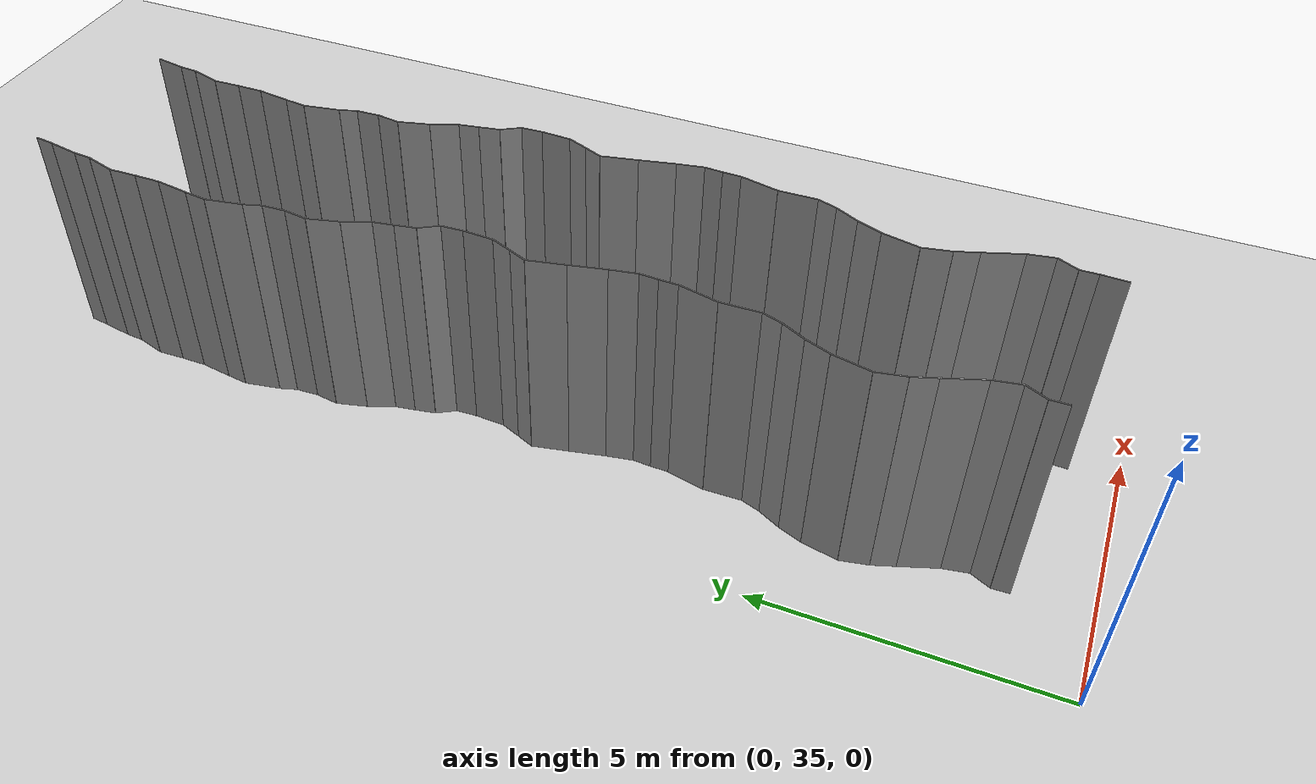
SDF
<sdf version="1.6">
 <world name="default">
  <model name="ground_plane">
   <static>1</static>
   <link name="link">
    <collision name="collision">
     <geometry><plane><normal>0 0 1</normal><size>200 200</size></plane></geometry>
     <surface><friction><ode><mu>100</mu><mu2>50</mu2></ode></friction></surface>
    </collision>
    <visual name="visual">
     <cast_shadows>0</cast_shadows>
     <geometry><plane><normal>0 0 1</normal><size>200 200</size></plane></geometry>
     <material>
      <script><uri>file://media/materials/scripts/gazebo.material</uri><name>Gazebo/Grey</name></script>
     </material>
    </visual>
   </link>
   <pose>0 100 0 0 -0 0</pose>
  </model>
  <model name="wall_149">
   <static>1</static>
   <pose>4.607935788455231 36.032615531792295 2 0 0 -0.03438574817152011</pose>
   <link name="link">
    <collision name="collision"><geometry><box><size>0.02 0.444556654903 4</size></box></geometry></collision>
    <visual name="visual">
     <material>
      <script><name>Gazebo/Grey</name><uri>file://media/materials/scripts/gazebo.material</uri></script>
     </material>
     <geometry><box><size>0.02 0.444556654903 4</size></box></geometry>
    </visual>
   </link>
  </model>
  <model name="wall_150">
   <static>1</static>
   <pose>1.6116442187727564 36.40527893857269 2 0 0 0.026125879081817616</pose>
   <link name="link">
    <collision name="collision"><geometry><box><size>0.02 0.301135716126 4</size></box></geometry></collision>
    <visual name="visual">
     <material>
      <script><name>Gazebo/Grey</name><uri>file://media/materials/scripts/gazebo.material</uri></script>
     </material>
     <geometry><box><size>0.02 0.301135716126 4</size></box></geometry>
    </visual>
   </link>
  </model>
  <model name="wall_151">
   <static>1</static>
   <pose>4.611644218772756 36.40527893857269 2 0 0 0.026125879081817616</pose>
   <link name="link">
    <collision name="collision"><geometry><box><size>0.02 0.301135716126 4</size></box></geometry></collision>
    <visual name="visual">
     <material>
      <script><name>Gazebo/Grey</name><uri>file://media/materials/scripts/gazebo.material</uri></script>
     </material>
     <geometry><box><size>0.02 0.301135716126 4</size></box></geometry>
    </visual>
   </link>
  </model>
  <model name="wall_152">
   <static>1</static>
   <pose>1.69193314611958 36.724530471926734 2 0 0 -0.46295833106314915</pose>
   <link name="link">
    <collision name="collision"><geometry><box><size>0.02 0.37717316155 4</size></box></geometry></collision>
    <visual name="visual">
     <material>
      <script><name>Gazebo/Grey</name><uri>file://media/materials/scripts/gazebo.material</uri></script>
     </material>
     <geometry><box><size>0.02 0.37717316155 4</size></box></geometry>
    </visual>
   </link>
  </model>
  <model name="wall_153">
   <static>1</static>
   <pose>4.69193314611958 36.724530471926734 2 0 0 -0.46295833106314915</pose>
   <link name="link">
    <collision name="collision"><geometry><box><size>0.02 0.37717316155 4</size></box></geometry></collision>
    <visual name="visual">
     <material>
      <script><name>Gazebo/Grey</name><uri>file://media/materials/scripts/gazebo.material</uri></script>
     </material>
     <geometry><box><size>0.02 0.37717316155 4</size></box></geometry>
    </visual>
   </link>
  </model>
  <model name="wall_154">
   <static>1</static>
   <pose>1.7366929114682192 37.11580565431532 2 0 0 0.17550288364480096</pose>
   <link name="link">
    <collision name="collision"><geometry><box><size>0.02 0.452023850649 4</size></box></geometry></collision>
    <visual name="visual">
     <material>
      <script><name>Gazebo/Grey</name><uri>file://media/materials/scripts/gazebo.material</uri></script>
     </material>
     <geometry><box><size>0.02 0.452023850649 4</size></box></geometry>
    </visual>
   </link>
  </model>
  <model name="wall_155">
   <static>1</static>
   <pose>4.73669291146822 37.11580565431532 2 0 0 0.17550288364480096</pose>
   <link name="link">
    <collision name="collision"><geometry><box><size>0.02 0.452023850649 4</size></box></geometry></collision>
    <visual name="visual">
     <material>
      <script><name>Gazebo/Grey</name><uri>file://media/materials/scripts/gazebo.material</uri></script>
     </material>
     <geometry><box><size>0.02 0.452023850649 4</size></box></geometry>
    </visual>
   </link>
  </model>
  <model name="wall_156">
   <static>1</static>
   <pose>1.5841653047607114 37.66052971647894 2 0 0 0.33750630671110526</pose>
   <link name="link">
    <collision name="collision"><geometry><box><size>0.02 0.682894497378 4</size></box></geometry></collision>
    <visual name="visual">
     <material>
      <script><name>Gazebo/Grey</name><uri>file://media/materials/scripts/gazebo.material</uri></script>
     </material>
     <geometry><box><size>0.02 0.682894497378 4</size></box></geometry>
    </visual>
   </link>
  </model>
  <model name="wall_157">
   <static>1</static>
   <pose>4.584165304760711 37.66052971647894 2 0 0 0.33750630671110526</pose>
   <link name="link">
    <collision name="collision"><geometry><box><size>0.02 0.682894497378 4</size></box></geometry></collision>
    <visual name="visual">
     <material>
      <script><name>Gazebo/Grey</name><uri>file://media/materials/scripts/gazebo.material</uri></script>
     </material>
     <geometry><box><size>0.02 0.682894497378 4</size></box></geometry>
    </visual>
   </link>
  </model>
  <model name="wall_158">
   <static>1</static>
   <pose>1.4048971000738317 38.176314369873495 2 0 0 0.32949125764551274</pose>
   <link name="link">
    <collision name="collision"><geometry><box><size>0.02 0.4092142626 4</size></box></geometry></collision>
    <visual name="visual">
     <material>
      <script><name>Gazebo/Grey</name><uri>file://media/materials/scripts/gazebo.material</uri></script>
     </material>
     <geometry><box><size>0.02 0.4092142626 4</size></box></geometry>
    </visual>
   </link>
  </model>
  <model name="wall_159">
   <static>1</static>
   <pose>4.404897100073832 38.176314369873495 2 0 0 0.32949125764551274</pose>
   <link name="link">
    <collision name="collision"><geometry><box><size>0.02 0.4092142626 4</size></box></geometry></collision>
    <visual name="visual">
     <material>
      <script><name>Gazebo/Grey</name><uri>file://media/materials/scripts/gazebo.material</uri></script>
     </material>
     <geometry><box><size>0.02 0.4092142626 4</size></box></geometry>
    </visual>
   </link>
  </model>
  <model name="wall_160">
   <static>1</static>
   <pose>1.2908654537951212 38.61083364396229 2 0 0 0.1959779244728376</pose>
   <link name="link">
    <collision name="collision"><geometry><box><size>0.02 0.491240586568 4</size></box></geometry></collision>
    <visual name="visual">
     <material>
      <script><name>Gazebo/Grey</name><uri>file://media/materials/scripts/gazebo.material</uri></script>
     </material>
     <geometry><box><size>0.02 0.491240586568 4</size></box></geometry>
    </visual>
   </link>
  </model>
  <model name="wall_161">
   <static>1</static>
   <pose>4.290865453795121 38.61083364396229 2 0 0 0.1959779244728376</pose>
   <link name="link">
    <collision name="collision"><geometry><box><size>0.02 0.491240586568 4</size></box></geometry></collision>
    <visual name="visual">
     <material>
      <script><name>Gazebo/Grey</name><uri>file://media/materials/scripts/gazebo.material</uri></script>
     </material>
     <geometry><box><size>0.02 0.491240586568 4</size></box></geometry>
    </visual>
   </link>
  </model>
  <model name="wall_162">
   <static>1</static>
   <pose>1.3099877910784896 39.166904089664314 2 0 0 -0.20932824734926658</pose>
   <link name="link">
    <collision name="collision"><geometry><box><size>0.02 0.644369900013 4</size></box></geometry></collision>
    <visual name="visual">
     <material>
      <script><name>Gazebo/Grey</name><uri>file://media/materials/scripts/gazebo.material</uri></script>
     </material>
     <geometry><box><size>0.02 0.644369900013 4</size></box></geometry>
    </visual>
   </link>
  </model>
  <model name="wall_163">
   <static>1</static>
   <pose>4.309987791078489 39.166904089664314 2 0 0 -0.20932824734926658</pose>
   <link name="link">
    <collision name="collision"><geometry><box><size>0.02 0.644369900013 4</size></box></geometry></collision>
    <visual name="visual">
     <material>
      <script><name>Gazebo/Grey</name><uri>file://media/materials/scripts/gazebo.material</uri></script>
     </material>
     <geometry><box><size>0.02 0.644369900013 4</size></box></geometry>
    </visual>
   </link>
  </model>
  <model name="wall_164">
   <static>1</static>
   <pose>1.4570541713996676 39.68752432466886 2 0 0 -0.37178329030620566</pose>
   <link name="link">
    <collision name="collision"><geometry><box><size>0.02 0.441070169841 4</size></box></geometry></collision>
    <visual name="visual">
     <material>
      <script><name>Gazebo/Grey</name><uri>file://media/materials/scripts/gazebo.material</uri></script>
     </material>
     <geometry><box><size>0.02 0.441070169841 4</size></box></geometry>
    </visual>
   </link>
  </model>
  <model name="wall_165">
   <static>1</static>
   <pose>4.457054171399667 39.68752432466886 2 0 0 -0.37178329030620566</pose>
   <link name="link">
    <collision name="collision"><geometry><box><size>0.02 0.441070169841 4</size></box></geometry></collision>
    <visual name="visual">
     <material>
      <script><name>Gazebo/Grey</name><uri>file://media/materials/scripts/gazebo.material</uri></script>
     </material>
     <geometry><box><size>0.02 0.441070169841 4</size></box></geometry>
    </visual>
   </link>
  </model>
  <model name="wall_166">
   <static>1</static>
   <pose>1.6399018190564774 40.087944481858166 2 0 0 -0.48498393136698453</pose>
   <link name="link">
    <collision name="collision"><geometry><box><size>0.02 0.440727203903 4</size></box></geometry></collision>
    <visual name="visual">
     <material>
      <script><name>Gazebo/Grey</name><uri>file://media/materials/scripts/gazebo.material</uri></script>
     </material>
     <geometry><box><size>0.02 0.440727203903 4</size></box></geometry>
    </visual>
   </link>
  </model>
  <model name="wall_167">
   <static>1</static>
   <pose>4.639901819056478 40.087944481858166 2 0 0 -0.48498393136698453</pose>
   <link name="link">
    <collision name="collision"><geometry><box><size>0.02 0.440727203903 4</size></box></geometry></collision>
    <visual name="visual">
     <material>
      <script><name>Gazebo/Grey</name><uri>file://media/materials/scripts/gazebo.material</uri></script>
     </material>
     <geometry><box><size>0.02 0.440727203903 4</size></box></geometry>
    </visual>
   </link>
  </model>
  <model name="wall_168">
   <static>1</static>
   <pose>1.7999643570929313 40.44709837742644 2 0 0 -0.33591281420223734</pose>
   <link name="link">
    <collision name="collision"><geometry><box><size>0.02 0.347845313146 4</size></box></geometry></collision>
    <visual name="visual">
     <material>
      <script><name>Gazebo/Grey</name><uri>file://media/materials/scripts/gazebo.material</uri></script>
     </material>
     <geometry><box><size>0.02 0.347845313146 4</size></box></geometry>
    </visual>
   </link>
  </model>
  <model name="wall_169">
   <static>1</static>
   <pose>4.799964357092931 40.44709837742644 2 0 0 -0.33591281420223734</pose>
   <link name="link">
    <collision name="collision"><geometry><box><size>0.02 0.347845313146 4</size></box></geometry></collision>
    <visual name="visual">
     <material>
      <script><name>Gazebo/Grey</name><uri>file://media/materials/scripts/gazebo.material</uri></script>
     </material>
     <geometry><box><size>0.02 0.347845313146 4</size></box></geometry>
    </visual>
   </link>
  </model>
  <model name="wall_170">
   <static>1</static>
   <pose>1.850529104457263 40.94291155328133 2 0 0 0.020399291986711976</pose>
   <link name="link">
    <collision name="collision"><geometry><box><size>0.02 0.663360196463 4</size></box></geometry></collision>
    <visual name="visual">
     <material>
      <script><name>Gazebo/Grey</name><uri>file://media/materials/scripts/gazebo.material</uri></script>
     </material>
     <geometry><box><size>0.02 0.663360196463 4</size></box></geometry>
    </visual>
   </link>
  </model>
  <model name="wall_171">
   <static>1</static>
   <pose>4.850529104457263 40.94291155328133 2 0 0 0.020399291986711976</pose>
   <link name="link">
    <collision name="collision"><geometry><box><size>0.02 0.663360196463 4</size></box></geometry></collision>
    <visual name="visual">
     <material>
      <script><name>Gazebo/Grey</name><uri>file://media/materials/scripts/gazebo.material</uri></script>
     </material>
     <geometry><box><size>0.02 0.663360196463 4</size></box></geometry>
    </visual>
   </link>
  </model>
  <model name="wall_172">
   <static>1</static>
   <pose>1.9176693248582837 41.60390346517049 2 0 0 -0.22072227757623808</pose>
   <link name="link">
    <collision name="collision"><geometry><box><size>0.02 0.675140850648 4</size></box></geometry></collision>
    <visual name="visual">
     <material>
      <script><name>Gazebo/Grey</name><uri>file://media/materials/scripts/gazebo.material</uri></script>
     </material>
     <geometry><box><size>0.02 0.675140850648 4</size></box></geometry>
    </visual>
   </link>
  </model>
  <model name="wall_173">
   <static>1</static>
   <pose>4.9176693248582835 41.60390346517049 2 0 0 -0.22072227757623808</pose>
   <link name="link">
    <collision name="collision"><geometry><box><size>0.02 0.675140850648 4</size></box></geometry></collision>
    <visual name="visual">
     <material>
      <script><name>Gazebo/Grey</name><uri>file://media/materials/scripts/gazebo.material</uri></script>
     </material>
     <geometry><box><size>0.02 0.675140850648 4</size></box></geometry>
    </visual>
   </link>
  </model>
  <model name="wall_174">
   <static>1</static>
   <pose>1.9949579590159627 42.09232519163923 2 0 0 -0.02126706859409124</pose>
   <link name="link">
    <collision name="collision"><geometry><box><size>0.02 0.318153753883 4</size></box></geometry></collision>
    <visual name="visual">
     <material>
      <script><name>Gazebo/Grey</name><uri>file://media/materials/scripts/gazebo.material</uri></script>
     </material>
     <geometry><box><size>0.02 0.318153753883 4</size></box></geometry>
    </visual>
   </link>
  </model>
  <model name="wall_175">
   <static>1</static>
   <pose>4.994957959015963 42.09232519163923 2 0 0 -0.02126706859409124</pose>
   <link name="link">
    <collision name="collision"><geometry><box><size>0.02 0.318153753883 4</size></box></geometry></collision>
    <visual name="visual">
     <material>
      <script><name>Gazebo/Grey</name><uri>file://media/materials/scripts/gazebo.material</uri></script>
     </material>
     <geometry><box><size>0.02 0.318153753883 4</size></box></geometry>
    </visual>
   </link>
  </model>
  <model name="wall_176">
   <static>1</static>
   <pose>2.006879986465446 42.40796497451655 2 0 0 -0.054475071796729904</pose>
   <link name="link">
    <collision name="collision"><geometry><box><size>0.02 0.313663045464 4</size></box></geometry></collision>
    <visual name="visual">
     <material>
      <script><name>Gazebo/Grey</name><uri>file://media/materials/scripts/gazebo.material</uri></script>
     </material>
     <geometry><box><size>0.02 0.313663045464 4</size></box></geometry>
    </visual>
   </link>
  </model>
  <model name="wall_177">
   <static>1</static>
   <pose>5.006879986465446 42.40796497451655 2 0 0 -0.054475071796729904</pose>
   <link name="link">
    <collision name="collision"><geometry><box><size>0.02 0.313663045464 4</size></box></geometry></collision>
    <visual name="visual">
     <material>
      <script><name>Gazebo/Grey</name><uri>file://media/materials/scripts/gazebo.material</uri></script>
     </material>
     <geometry><box><size>0.02 0.313663045464 4</size></box></geometry>
    </visual>
   </link>
  </model>
  <model name="wall_178">
   <static>1</static>
   <pose>1.9733642905203035 42.79559261525096 2 0 0 0.18006152370393114</pose>
   <link name="link">
    <collision name="collision"><geometry><box><size>0.02 0.469650515595 4</size></box></geometry></collision>
    <visual name="visual">
     <material>
      <script><name>Gazebo/Grey</name><uri>file://media/materials/scripts/gazebo.material</uri></script>
     </material>
     <geometry><box><size>0.02 0.469650515595 4</size></box></geometry>
    </visual>
   </link>
  </model>
  <model name="wall_179">
   <static>1</static>
   <pose>4.973364290520303 42.79559261525096 2 0 0 0.18006152370393114</pose>
   <link name="link">
    <collision name="collision"><geometry><box><size>0.02 0.469650515595 4</size></box></geometry></collision>
    <visual name="visual">
     <material>
      <script><name>Gazebo/Grey</name><uri>file://media/materials/scripts/gazebo.material</uri></script>
     </material>
     <geometry><box><size>0.02 0.469650515595 4</size></box></geometry>
    </visual>
   </link>
  </model>
  <model name="wall_180">
   <static>1</static>
   <pose>1.8635511238065832 43.333333395315094 2 0 0 0.2174260095121163</pose>
   <link name="link">
    <collision name="collision"><geometry><box><size>0.02 0.628214764523 4</size></box></geometry></collision>
    <visual name="visual">
     <material>
      <script><name>Gazebo/Grey</name><uri>file://media/materials/scripts/gazebo.material</uri></script>
     </material>
     <geometry><box><size>0.02 0.628214764523 4</size></box></geometry>
    </visual>
   </link>
  </model>
  <model name="wall_181">
   <static>1</static>
   <pose>4.863551123806583 43.333333395315094 2 0 0 0.2174260095121163</pose>
   <link name="link">
    <collision name="collision"><geometry><box><size>0.02 0.628214764523 4</size></box></geometry></collision>
    <visual name="visual">
     <material>
      <script><name>Gazebo/Grey</name><uri>file://media/materials/scripts/gazebo.material</uri></script>
     </material>
     <geometry><box><size>0.02 0.628214764523 4</size></box></geometry>
    </visual>
   </link>
  </model>
  <model name="wall_182">
   <static>1</static>
   <pose>1.7293402014183823 43.9556949028297 2 0 0 0.2074965636752175</pose>
   <link name="link">
    <collision name="collision"><geometry><box><size>0.02 0.645137358488 4</size></box></geometry></collision>
    <visual name="visual">
     <material>
      <script><name>Gazebo/Grey</name><uri>file://media/materials/scripts/gazebo.material</uri></script>
     </material>
     <geometry><box><size>0.02 0.645137358488 4</size></box></geometry>
    </visual>
   </link>
  </model>
  <model name="wall_183">
   <static>1</static>
   <pose>4.729340201418382 43.9556949028297 2 0 0 0.2074965636752175</pose>
   <link name="link">
    <collision name="collision"><geometry><box><size>0.02 0.645137358488 4</size></box></geometry></collision>
    <visual name="visual">
     <material>
      <script><name>Gazebo/Grey</name><uri>file://media/materials/scripts/gazebo.material</uri></script>
     </material>
     <geometry><box><size>0.02 0.645137358488 4</size></box></geometry>
    </visual>
   </link>
  </model>
  <model name="wall_184">
   <static>1</static>
   <pose>1.7272136833221436 44.42096523286254 2 0 0 -0.40603688779402847</pose>
   <link name="link">
    <collision name="collision"><geometry><box><size>0.02 0.32572531572 4</size></box></geometry></collision>
    <visual name="visual">
     <material>
      <script><name>Gazebo/Grey</name><uri>file://media/materials/scripts/gazebo.material</uri></script>
     </material>
     <geometry><box><size>0.02 0.32572531572 4</size></box></geometry>
    </visual>
   </link>
  </model>
  <model name="wall_185">
   <static>1</static>
   <pose>4.727213683322144 44.42096523286254 2 0 0 -0.40603688779402847</pose>
   <link name="link">
    <collision name="collision"><geometry><box><size>0.02 0.32572531572 4</size></box></geometry></collision>
    <visual name="visual">
     <material>
      <script><name>Gazebo/Grey</name><uri>file://media/materials/scripts/gazebo.material</uri></script>
     </material>
     <geometry><box><size>0.02 0.32572531572 4</size></box></geometry>
    </visual>
   </link>
  </model>
  <model name="wall_186">
   <static>1</static>
   <pose>1.863933079940596 44.74823319841663 2 0 0 -0.3869651493304434</pose>
   <link name="link">
    <collision name="collision"><geometry><box><size>0.02 0.383662809634 4</size></box></geometry></collision>
    <visual name="visual">
     <material>
      <script><name>Gazebo/Grey</name><uri>file://media/materials/scripts/gazebo.material</uri></script>
     </material>
     <geometry><box><size>0.02 0.383662809634 4</size></box></geometry>
    </visual>
   </link>
  </model>
  <model name="wall_187">
   <static>1</static>
   <pose>4.863933079940596 44.74823319841663 2 0 0 -0.3869651493304434</pose>
   <link name="link">
    <collision name="collision"><geometry><box><size>0.02 0.383662809634 4</size></box></geometry></collision>
    <visual name="visual">
     <material>
      <script><name>Gazebo/Grey</name><uri>file://media/materials/scripts/gazebo.material</uri></script>
     </material>
     <geometry><box><size>0.02 0.383662809634 4</size></box></geometry>
    </visual>
   </link>
  </model>
  <model name="wall_188">
   <static>1</static>
   <pose>1.948451969874693 45.18685482757949 2 0 0 -0.04642942499322022</pose>
   <link name="link">
    <collision name="collision"><geometry><box><size>0.02 0.522512094947 4</size></box></geometry></collision>
    <visual name="visual">
     <material>
      <script><name>Gazebo/Grey</name><uri>file://media/materials/scripts/gazebo.material</uri></script>
     </material>
     <geometry><box><size>0.02 0.522512094947 4</size></box></geometry>
    </visual>
   </link>
  </model>
  <model name="wall_189">
   <static>1</static>
   <pose>4.948451969874693 45.18685482757949 2 0 0 -0.04642942499322022</pose>
   <link name="link">
    <collision name="collision"><geometry><box><size>0.02 0.522512094947 4</size></box></geometry></collision>
    <visual name="visual">
     <material>
      <script><name>Gazebo/Grey</name><uri>file://media/materials/scripts/gazebo.material</uri></script>
     </material>
     <geometry><box><size>0.02 0.522512094947 4</size></box></geometry>
    </visual>
   </link>
  </model>
  <model name="wall_190">
   <static>1</static>
   <pose>1.9511836393603548 45.63468031315658 2 0 0 0.05023274825525915</pose>
   <link name="link">
    <collision name="collision"><geometry><box><size>0.02 0.374173945209 4</size></box></geometry></collision>
    <visual name="visual">
     <material>
      <script><name>Gazebo/Grey</name><uri>file://media/materials/scripts/gazebo.material</uri></script>
     </material>
     <geometry><box><size>0.02 0.374173945209 4</size></box></geometry>
    </visual>
   </link>
  </model>
  <model name="wall_191">
   <static>1</static>
   <pose>4.951183639360355 45.63468031315658 2 0 0 0.05023274825525915</pose>
   <link name="link">
    <collision name="collision"><geometry><box><size>0.02 0.374173945209 4</size></box></geometry></collision>
    <visual name="visual">
     <material>
      <script><name>Gazebo/Grey</name><uri>file://media/materials/scripts/gazebo.material</uri></script>
     </material>
     <geometry><box><size>0.02 0.374173945209 4</size></box></geometry>
    </visual>
   </link>
  </model>
  <model name="wall_192">
   <static>1</static>
   <pose>1.845061117609964 45.9816268817608 2 0 0 0.5434966461481293</pose>
   <link name="link">
    <collision name="collision"><geometry><box><size>0.02 0.37409632681 4</size></box></geometry></collision>
    <visual name="visual">
     <material>
      <script><name>Gazebo/Grey</name><uri>file://media/materials/scripts/gazebo.material</uri></script>
     </material>
     <geometry><box><size>0.02 0.37409632681 4</size></box></geometry>
    </visual>
   </link>
  </model>
  <model name="wall_193">
   <static>1</static>
   <pose>4.845061117609964 45.9816268817608 2 0 0 0.5434966461481293</pose>
   <link name="link">
    <collision name="collision"><geometry><box><size>0.02 0.37409632681 4</size></box></geometry></collision>
    <visual name="visual">
     <material>
      <script><name>Gazebo/Grey</name><uri>file://media/materials/scripts/gazebo.material</uri></script>
     </material>
     <geometry><box><size>0.02 0.37409632681 4</size></box></geometry>
    </visual>
   </link>
  </model>
  <model name="wall_194">
   <static>1</static>
   <pose>1.715144856709596 46.32228752155245 2 0 0 0.18177028288206043</pose>
   <link name="link">
    <collision name="collision"><geometry><box><size>0.02 0.367179303723 4</size></box></geometry></collision>
    <visual name="visual">
     <material>
      <script><name>Gazebo/Grey</name><uri>file://media/materials/scripts/gazebo.material</uri></script>
     </material>
     <geometry><box><size>0.02 0.367179303723 4</size></box></geometry>
    </visual>
   </link>
  </model>
  <model name="wall_195">
   <static>1</static>
   <pose>4.715144856709596 46.32228752155245 2 0 0 0.18177028288206043</pose>
   <link name="link">
    <collision name="collision"><geometry><box><size>0.02 0.367179303723 4</size></box></geometry></collision>
    <visual name="visual">
     <material>
      <script><name>Gazebo/Grey</name><uri>file://media/materials/scripts/gazebo.material</uri></script>
     </material>
     <geometry><box><size>0.02 0.367179303723 4</size></box></geometry>
    </visual>
   </link>
  </model>
  <model name="wall_196">
   <static>1</static>
   <pose>1.6519105097787132 46.67659879059102 2 0 0 0.17124057247637667</pose>
   <link name="link">
    <collision name="collision"><geometry><box><size>0.02 0.35265025151 4</size></box></geometry></collision>
    <visual name="visual">
     <material>
      <script><name>Gazebo/Grey</name><uri>file://media/materials/scripts/gazebo.material</uri></script>
     </material>
     <geometry><box><size>0.02 0.35265025151 4</size></box></geometry>
    </visual>
   </link>
  </model>
  <model name="wall_197">
   <static>1</static>
   <pose>4.6519105097787135 46.67659879059102 2 0 0 0.17124057247637667</pose>
   <link name="link">
    <collision name="collision"><geometry><box><size>0.02 0.35265025151 4</size></box></geometry></collision>
    <visual name="visual">
     <material>
      <script><name>Gazebo/Grey</name><uri>file://media/materials/scripts/gazebo.material</uri></script>
     </material>
     <geometry><box><size>0.02 0.35265025151 4</size></box></geometry>
    </visual>
   </link>
  </model>
  <model name="wall_198">
   <static>1</static>
   <pose>1.5300435925576363 47.082895354931004 2 0 0 0.3760504663091691</pose>
   <link name="link">
    <collision name="collision"><geometry><box><size>0.02 0.500042488654 4</size></box></geometry></collision>
    <visual name="visual">
     <material>
      <script><name>Gazebo/Grey</name><uri>file://media/materials/scripts/gazebo.material</uri></script>
     </material>
     <geometry><box><size>0.02 0.500042488654 4</size></box></geometry>
    </visual>
   </link>
  </model>
  <model name="wall_199">
   <static>1</static>
   <pose>4.530043592557636 47.082895354931004 2 0 0 0.3760504663091691</pose>
   <link name="link">
    <collision name="collision"><geometry><box><size>0.02 0.500042488654 4</size></box></geometry></collision>
    <visual name="visual">
     <material>
      <script><name>Gazebo/Grey</name><uri>file://media/materials/scripts/gazebo.material</uri></script>
     </material>
     <geometry><box><size>0.02 0.500042488654 4</size></box></geometry>
    </visual>
   </link>
  </model>
  <model name="wall_200">
   <static>1</static>
   <pose>1.3689864097985098 47.58445174954074 2 0 0 0.251912937857283</pose>
   <link name="link">
    <collision name="collision"><geometry><box><size>0.02 0.555546599517 4</size></box></geometry></collision>
    <visual name="visual">
     <material>
      <script><name>Gazebo/Grey</name><uri>file://media/materials/scripts/gazebo.material</uri></script>
     </material>
     <geometry><box><size>0.02 0.555546599517 4</size></box></geometry>
    </visual>
   </link>
  </model>
  <model name="wall_201">
   <static>1</static>
   <pose>4.368986409798509 47.58445174954074 2 0 0 0.251912937857283</pose>
   <link name="link">
    <collision name="collision"><geometry><box><size>0.02 0.555546599517 4</size></box></geometry></collision>
    <visual name="visual">
     <material>
      <script><name>Gazebo/Grey</name><uri>file://media/materials/scripts/gazebo.material</uri></script>
     </material>
     <geometry><box><size>0.02 0.555546599517 4</size></box></geometry>
    </visual>
   </link>
  </model>
  <model name="wall_202">
   <static>1</static>
   <pose>1.3277647116938813 48.05791869955121 2 0 0 -0.13617204486441617</pose>
   <link name="link">
    <collision name="collision"><geometry><box><size>0.02 0.412742603857 4</size></box></geometry></collision>
    <visual name="visual">
     <material>
      <script><name>Gazebo/Grey</name><uri>file://media/materials/scripts/gazebo.material</uri></script>
     </material>
     <geometry><box><size>0.02 0.412742603857 4</size></box></geometry>
    </visual>
   </link>
  </model>
  <model name="wall_203">
   <static>1</static>
   <pose>4.327764711693881 48.05791869955121 2 0 0 -0.13617204486441617</pose>
   <link name="link">
    <collision name="collision"><geometry><box><size>0.02 0.412742603857 4</size></box></geometry></collision>
    <visual name="visual">
     <material>
      <script><name>Gazebo/Grey</name><uri>file://media/materials/scripts/gazebo.material</uri></script>
     </material>
     <geometry><box><size>0.02 0.412742603857 4</size></box></geometry>
    </visual>
   </link>
  </model>
  <model name="wall_204">
   <static>1</static>
   <pose>1.3467147370334625 48.46371208303893 2 0 0 0.04499567197379516</pose>
   <link name="link">
    <collision name="collision"><geometry><box><size>0.02 0.40307292471 4</size></box></geometry></collision>
    <visual name="visual">
     <material>
      <script><name>Gazebo/Grey</name><uri>file://media/materials/scripts/gazebo.material</uri></script>
     </material>
     <geometry><box><size>0.02 0.40307292471 4</size></box></geometry>
    </visual>
   </link>
  </model>
  <model name="wall_205">
   <static>1</static>
   <pose>4.346714737033462 48.46371208303893 2 0 0 0.04499567197379516</pose>
   <link name="link">
    <collision name="collision"><geometry><box><size>0.02 0.40307292471 4</size></box></geometry></collision>
    <visual name="visual">
     <material>
      <script><name>Gazebo/Grey</name><uri>file://media/materials/scripts/gazebo.material</uri></script>
     </material>
     <geometry><box><size>0.02 0.40307292471 4</size></box></geometry>
    </visual>
   </link>
  </model>
  <model name="wall_206">
   <static>1</static>
   <pose>1.2905054949497619 48.81749605104752 2 0 0 0.29991176533927894</pose>
   <link name="link">
    <collision name="collision"><geometry><box><size>0.02 0.319148968049 4</size></box></geometry></collision>
    <visual name="visual">
     <material>
      <script><name>Gazebo/Grey</name><uri>file://media/materials/scripts/gazebo.material</uri></script>
     </material>
     <geometry><box><size>0.02 0.319148968049 4</size></box></geometry>
    </visual>
   </link>
  </model>
  <model name="wall_207">
   <static>1</static>
   <pose>4.290505494949762 48.81749605104752 2 0 0 0.29991176533927894</pose>
   <link name="link">
    <collision name="collision"><geometry><box><size>0.02 0.319148968049 4</size></box></geometry></collision>
    <visual name="visual">
     <material>
      <script><name>Gazebo/Grey</name><uri>file://media/materials/scripts/gazebo.material</uri></script>
     </material>
     <geometry><box><size>0.02 0.319148968049 4</size></box></geometry>
    </visual>
   </link>
  </model>
  <model name="wall_208">
   <static>1</static>
   <pose>1.1872085136054475 49.28817085725227 2 0 0 0.17465967954229683</pose>
   <link name="link">
    <collision name="collision"><geometry><box><size>0.02 0.64627930203 4</size></box></geometry></collision>
    <visual name="visual">
     <material>
      <script><name>Gazebo/Grey</name><uri>file://media/materials/scripts/gazebo.material</uri></script>
     </material>
     <geometry><box><size>0.02 0.64627930203 4</size></box></geometry>
    </visual>
   </link>
  </model>
  <model name="wall_209">
   <static>1</static>
   <pose>4.187208513605448 49.28817085725227 2 0 0 0.17465967954229683</pose>
   <link name="link">
    <collision name="collision"><geometry><box><size>0.02 0.64627930203 4</size></box></geometry></collision>
    <visual name="visual">
     <material>
      <script><name>Gazebo/Grey</name><uri>file://media/materials/scripts/gazebo.material</uri></script>
     </material>
     <geometry><box><size>0.02 0.64627930203 4</size></box></geometry>
    </visual>
   </link>
  </model>
  <model name="wall_210">
   <static>1</static>
   <pose>1.1536446120585397 49.79701781291107 2 0 0 -0.11795071139867383</pose>
   <link name="link">
    <collision name="collision"><geometry><box><size>0.02 0.38391476164 4</size></box></geometry></collision>
    <visual name="visual">
     <material>
      <script><name>Gazebo/Grey</name><uri>file://media/materials/scripts/gazebo.material</uri></script>
     </material>
     <geometry><box><size>0.02 0.38391476164 4</size></box></geometry>
    </visual>
   </link>
  </model>
  <model name="wall_211">
   <static>1</static>
   <pose>4.15364461205854 49.79701781291107 2 0 0 -0.11795071139867383</pose>
   <link name="link">
    <collision name="collision"><geometry><box><size>0.02 0.38391476164 4</size></box></geometry></collision>
    <visual name="visual">
     <material>
      <script><name>Gazebo/Grey</name><uri>file://media/materials/scripts/gazebo.material</uri></script>
     </material>
     <geometry><box><size>0.02 0.38391476164 4</size></box></geometry>
    </visual>
   </link>
  </model>
  <model name="wall_212">
   <static>1</static>
   <pose>1.216388534978533 50.2755348167885 2 0 0 -0.13858422994492273</pose>
   <link name="link">
    <collision name="collision"><geometry><box><size>0.02 0.581360489613 4</size></box></geometry></collision>
    <visual name="visual">
     <material>
      <script><name>Gazebo/Grey</name><uri>file://media/materials/scripts/gazebo.material</uri></script>
     </material>
     <geometry><box><size>0.02 0.581360489613 4</size></box></geometry>
    </visual>
   </link>
  </model>
  <model name="wall_213">
   <static>1</static>
   <pose>4.216388534978533 50.2755348167885 2 0 0 -0.13858422994492273</pose>
   <link name="link">
    <collision name="collision"><geometry><box><size>0.02 0.581360489613 4</size></box></geometry></collision>
    <visual name="visual">
     <material>
      <script><name>Gazebo/Grey</name><uri>file://media/materials/scripts/gazebo.material</uri></script>
     </material>
     <geometry><box><size>0.02 0.581360489613 4</size></box></geometry>
    </visual>
   </link>
  </model>
  <model name="wall_214">
   <static>1</static>
   <pose>1.2554144882781093 50.79131154079049 2 0 0 0.004953910529784056</pose>
   <link name="link">
    <collision name="collision"><geometry><box><size>0.02 0.455772307058 4</size></box></geometry></collision>
    <visual name="visual">
     <material>
      <script><name>Gazebo/Grey</name><uri>file://media/materials/scripts/gazebo.material</uri></script>
     </material>
     <geometry><box><size>0.02 0.455772307058 4</size></box></geometry>
    </visual>
   </link>
  </model>
  <model name="wall_215">
   <static>1</static>
   <pose>4.2554144882781095 50.79131154079049 2 0 0 0.004953910529784056</pose>
   <link name="link">
    <collision name="collision"><geometry><box><size>0.02 0.455772307058 4</size></box></geometry></collision>
    <visual name="visual">
     <material>
      <script><name>Gazebo/Grey</name><uri>file://media/materials/scripts/gazebo.material</uri></script>
     </material>
     <geometry><box><size>0.02 0.455772307058 4</size></box></geometry>
    </visual>
   </link>
  </model>
  <model name="wall_216">
   <static>1</static>
   <pose>1.2459950957993735 51.26005110134364 2 0 0 0.034407241864026</pose>
   <link name="link">
    <collision name="collision"><geometry><box><size>0.02 0.481997686976 4</size></box></geometry></collision>
    <visual name="visual">
     <material>
      <script><name>Gazebo/Grey</name><uri>file://media/materials/scripts/gazebo.material</uri></script>
     </material>
     <geometry><box><size>0.02 0.481997686976 4</size></box></geometry>
    </visual>
   </link>
  </model>
  <model name="wall_217">
   <static>1</static>
   <pose>4.2459950957993735 51.26005110134364 2 0 0 0.034407241864026</pose>
   <link name="link">
    <collision name="collision"><geometry><box><size>0.02 0.481997686976 4</size></box></geometry></collision>
    <visual name="visual">
     <material>
      <script><name>Gazebo/Grey</name><uri>file://media/materials/scripts/gazebo.material</uri></script>
     </material>
     <geometry><box><size>0.02 0.481997686976 4</size></box></geometry>
    </visual>
   </link>
  </model>
  <model name="wall_218">
   <static>1</static>
   <pose>1.3112736720320821 51.76059842244061 2 0 0 -0.27606100143527695</pose>
   <link name="link">
    <collision name="collision"><geometry><box><size>0.02 0.539821752576 4</size></box></geometry></collision>
    <visual name="visual">
     <material>
      <script><name>Gazebo/Grey</name><uri>file://media/materials/scripts/gazebo.material</uri></script>
     </material>
     <geometry><box><size>0.02 0.539821752576 4</size></box></geometry>
    </visual>
   </link>
  </model>
  <model name="wall_219">
   <static>1</static>
   <pose>4.311273672032082 51.76059842244061 2 0 0 -0.27606100143527695</pose>
   <link name="link">
    <collision name="collision"><geometry><box><size>0.02 0.539821752576 4</size></box></geometry></collision>
    <visual name="visual">
     <material>
      <script><name>Gazebo/Grey</name><uri>file://media/materials/scripts/gazebo.material</uri></script>
     </material>
     <geometry><box><size>0.02 0.539821752576 4</size></box></geometry>
    </visual>
   </link>
  </model>
  <model name="wall_220">
   <static>1</static>
   <pose>1.396473361210746 52.179722584999276 2 0 0 -0.07282102333706235</pose>
   <link name="link">
    <collision name="collision"><geometry><box><size>0.02 0.319713419401 4</size></box></geometry></collision>
    <visual name="visual">
     <material>
      <script><name>Gazebo/Grey</name><uri>file://media/materials/scripts/gazebo.material</uri></script>
     </material>
     <geometry><box><size>0.02 0.319713419401 4</size></box></geometry>
    </visual>
   </link>
  </model>
  <model name="wall_221">
   <static>1</static>
   <pose>4.396473361210746 52.179722584999276 2 0 0 -0.07282102333706235</pose>
   <link name="link">
    <collision name="collision"><geometry><box><size>0.02 0.319713419401 4</size></box></geometry></collision>
    <visual name="visual">
     <material>
      <script><name>Gazebo/Grey</name><uri>file://media/materials/scripts/gazebo.material</uri></script>
     </material>
     <geometry><box><size>0.02 0.319713419401 4</size></box></geometry>
    </visual>
   </link>
  </model>
  <model name="wall_222">
   <static>1</static>
   <pose>1.45407971622133 52.608662854825354 2 0 0 -0.16896523824520318</pose>
   <link name="link">
    <collision name="collision"><geometry><box><size>0.02 0.546801281646 4</size></box></geometry></collision>
    <visual name="visual">
     <material>
      <script><name>Gazebo/Grey</name><uri>file://media/materials/scripts/gazebo.material</uri></script>
     </material>
     <geometry><box><size>0.02 0.546801281646 4</size></box></geometry>
    </visual>
   </link>
  </model>
  <model name="wall_223">
   <static>1</static>
   <pose>4.4540797162213295 52.608662854825354 2 0 0 -0.16896523824520318</pose>
   <link name="link">
    <collision name="collision"><geometry><box><size>0.02 0.546801281646 4</size></box></geometry></collision>
    <visual name="visual">
     <material>
      <script><name>Gazebo/Grey</name><uri>file://media/materials/scripts/gazebo.material</uri></script>
     </material>
     <geometry><box><size>0.02 0.546801281646 4</size></box></geometry>
    </visual>
   </link>
  </model>
  <model name="wall_224">
   <static>1</static>
   <pose>1.5211353609771208 53.04856741819924 2 0 0 -0.12308509335069899</pose>
   <link name="link">
    <collision name="collision"><geometry><box><size>0.02 0.343392582881 4</size></box></geometry></collision>
    <visual name="visual">
     <material>
      <script><name>Gazebo/Grey</name><uri>file://media/materials/scripts/gazebo.material</uri></script>
     </material>
     <geometry><box><size>0.02 0.343392582881 4</size></box></geometry>
    </visual>
   </link>
  </model>
 </world>
</sdf>
